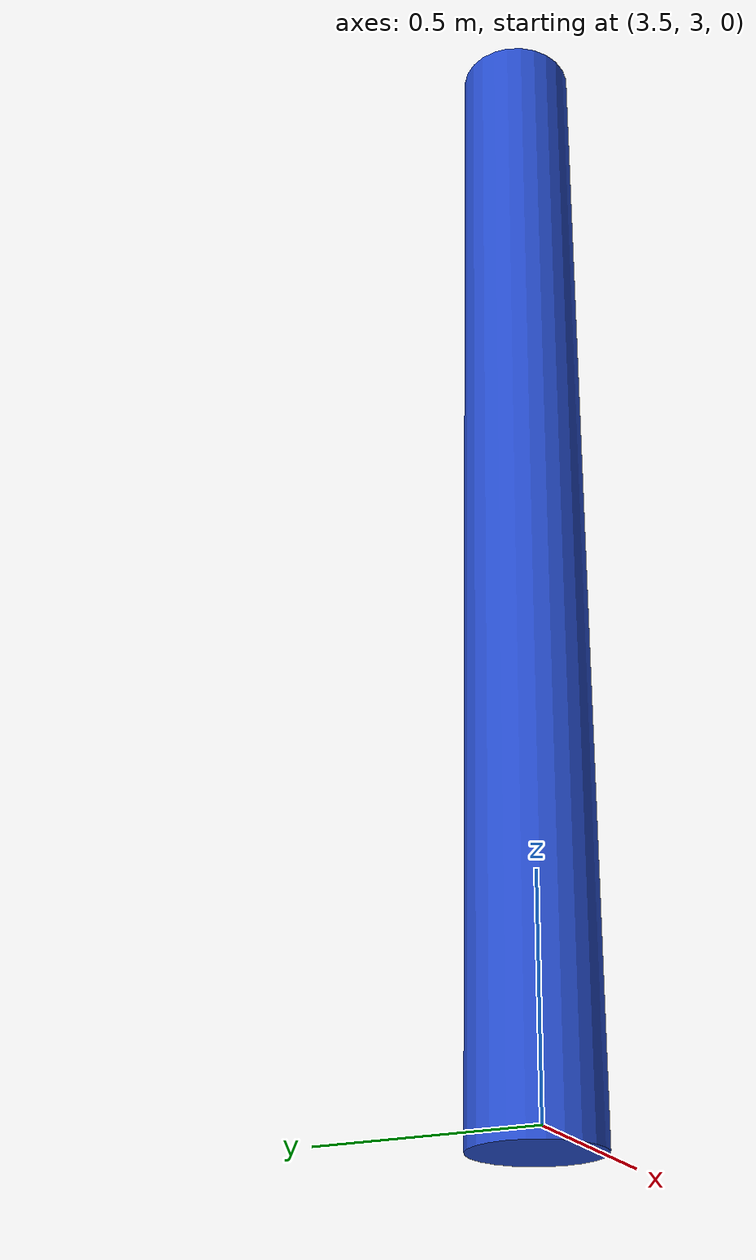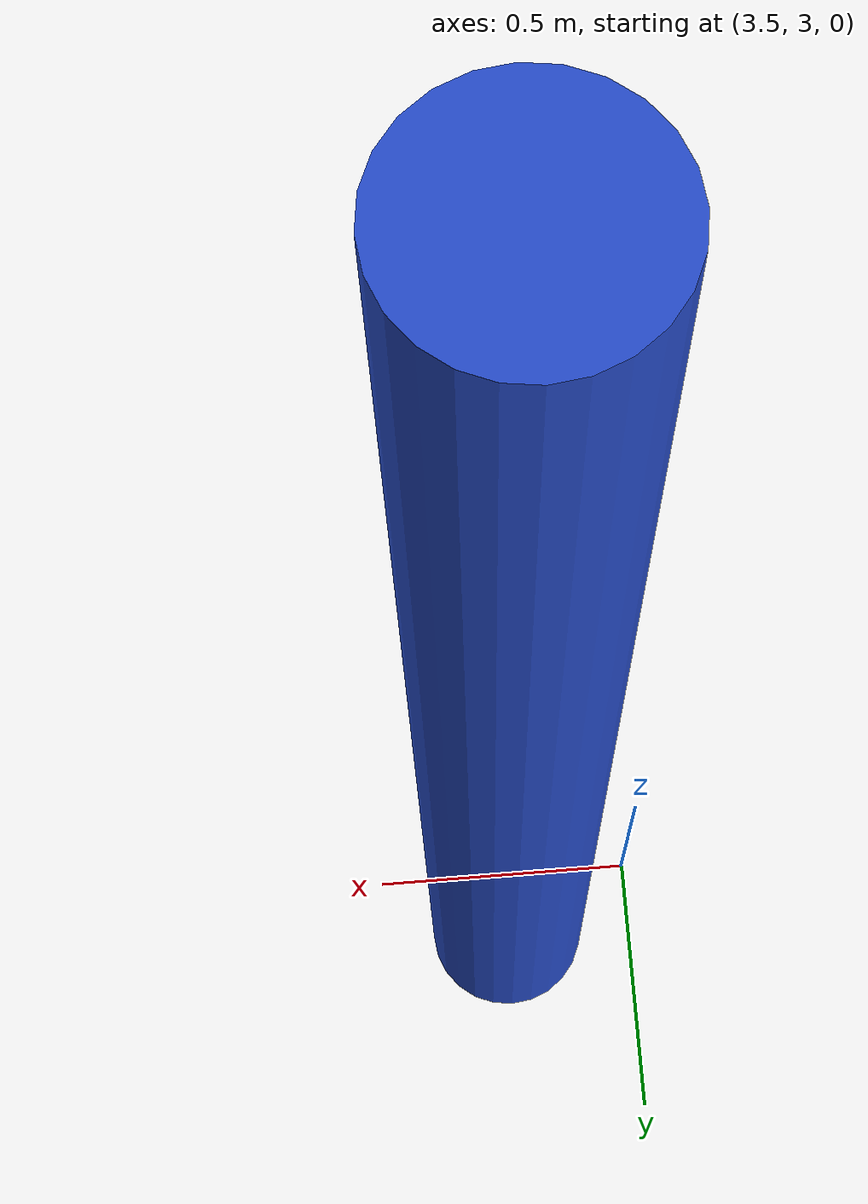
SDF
<?xml version="1.0" ?>
<sdf version="1.6">
  <model name="blue_transparent_cylinder">
    <static>true</static>
    <pose>3.75 3.12 1.5 0 0 0</pose>
    <link name="link">
      <visual name="visual">
        <geometry>
          <cylinder>
            <radius>0.15</radius>
            <length>3.0</length>
          </cylinder>
        </geometry>
        <material>
          <script>
            <uri>file://media/materials/scripts/gazebo.material</uri>
            <name>Gazebo/Blue</name>
          </script>
          <ambient>0 0 1 0.5</ambient> <!-- Blue, semi-transparent -->
        </material>
      </visual>
    </link>
  </model>
</sdf>
